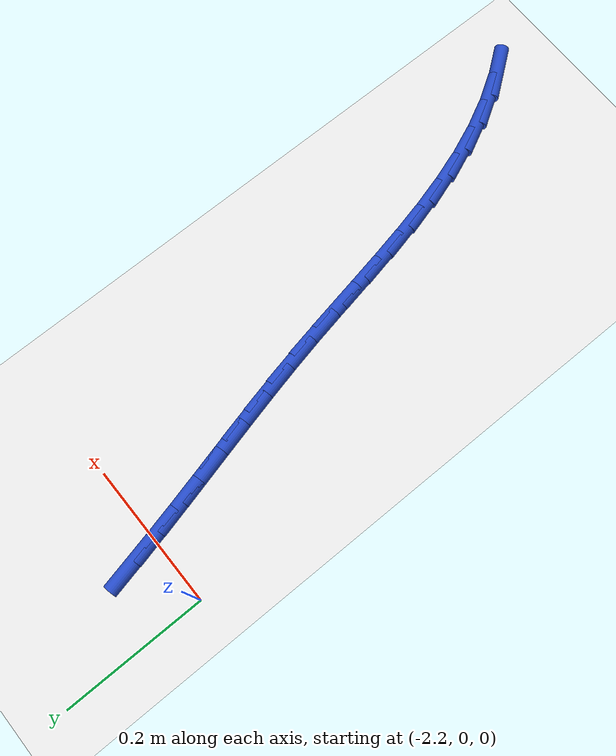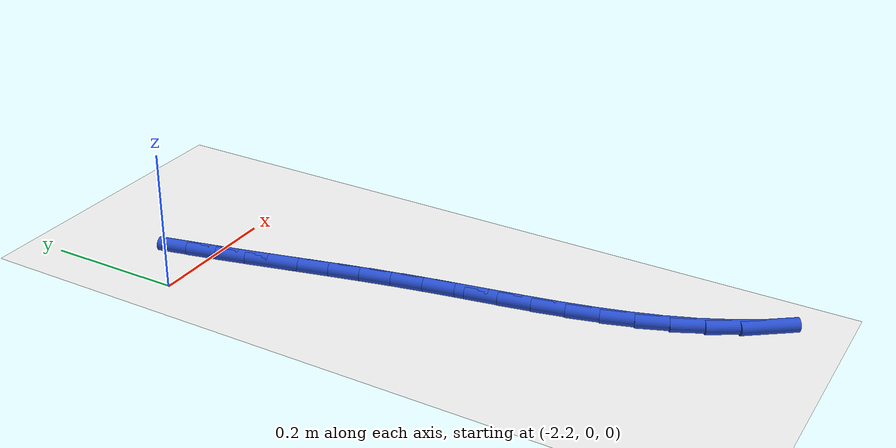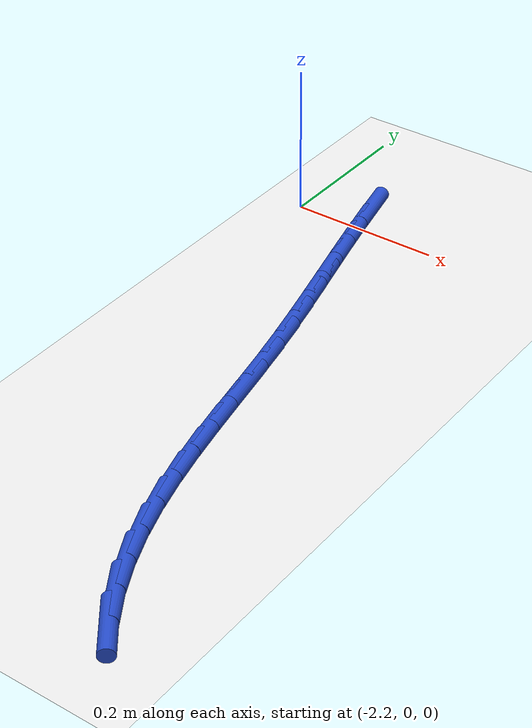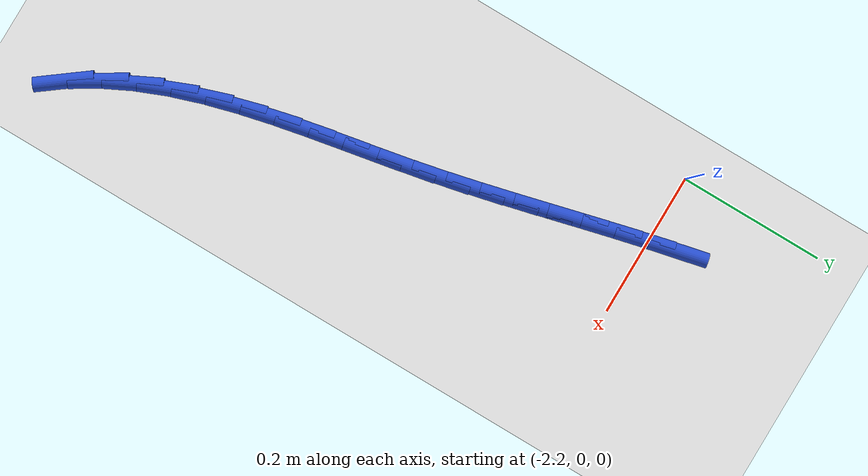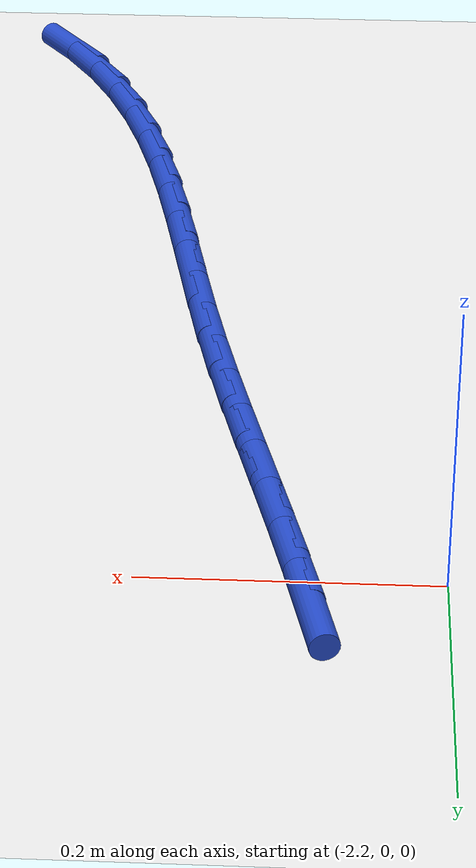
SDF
<sdf version="1.6">
 <world name="default">
  <model name="ground_plane">
   <static>1</static>
   <link name="link">
    <collision name="collision">
     <geometry><plane><normal>0 0 1</normal><size>100 100</size></plane></geometry>
     <surface><friction><ode><mu>100</mu><mu2>50</mu2></ode></friction></surface>
    </collision>
    <visual name="visual">
     <cast_shadows>0</cast_shadows>
     <geometry><plane><normal>0 0 1</normal><size>100 100</size></plane></geometry>
     <material>
      <script><uri>file://media/materials/scripts/gazebo.material</uri><name>Gazebo/WhiteGlow</name></script>
     </material>
    </visual>
   </link>
  </model>
  <model name="line">
   <link name="link_77">
    <pose>-2.1142000511492327 0.0394277965755552 0.01 0 1.57 -1.3484140880398947</pose>
    <collision name="collision">
     <geometry><cylinder><radius>0.01</radius><length>0.08</length></cylinder></geometry>
    </collision>
    <visual name="visual">
     <material>
      <script><name>Gazebo/Blue</name><uri>file://media/materials/scripts/gazebo.material</uri></script>
     </material>
     <geometry><cylinder><radius>0.01</radius><length>0.08</length></cylinder></geometry>
    </visual>
   </link>
   <link name="link_78">
    <pose>-2.104158903244551 -0.0049780658135669086 0.01 0 1.57 -1.334063538737932</pose>
    <collision name="collision">
     <geometry><cylinder><radius>0.01</radius><length>0.08</length></cylinder></geometry>
    </collision>
    <visual name="visual">
     <material>
      <script><name>Gazebo/Blue</name><uri>file://media/materials/scripts/gazebo.material</uri></script>
     </material>
     <geometry><cylinder><radius>0.01</radius><length>0.08</length></cylinder></geometry>
    </visual>
   </link>
   <link name="link_79">
    <pose>-2.093472280368735 -0.04927373934642896 0.01 0 1.57 -1.325168287179486</pose>
    <collision name="collision">
     <geometry><cylinder><radius>0.01</radius><length>0.08</length></cylinder></geometry>
    </collision>
    <visual name="visual">
     <material>
      <script><name>Gazebo/Blue</name><uri>file://media/materials/scripts/gazebo.material</uri></script>
     </material>
     <geometry><cylinder><radius>0.01</radius><length>0.08</length></cylinder></geometry>
    </visual>
   </link>
   <link name="link_80">
    <pose>-2.0823722533243516 -0.09355162733251586 0.01 0 1.57 -1.3217213898707902</pose>
    <collision name="collision">
     <geometry><cylinder><radius>0.01</radius><length>0.08</length></cylinder></geometry>
    </collision>
    <visual name="visual">
     <material>
      <script><name>Gazebo/Blue</name><uri>file://media/materials/scripts/gazebo.material</uri></script>
     </material>
     <geometry><cylinder><radius>0.01</radius><length>0.08</length></cylinder></geometry>
    </visual>
   </link>
   <link name="link_81">
    <pose>-2.071090892913961 -0.13790413308131555 0.01 0 1.57 -1.3236890536183739</pose>
    <collision name="collision">
     <geometry><cylinder><radius>0.01</radius><length>0.08</length></cylinder></geometry>
    </collision>
    <visual name="visual">
     <material>
      <script><name>Gazebo/Blue</name><uri>file://media/materials/scripts/gazebo.material</uri></script>
     </material>
     <geometry><cylinder><radius>0.01</radius><length>0.08</length></cylinder></geometry>
    </visual>
   </link>
   <link name="link_82">
    <pose>-2.0598602699401303 -0.18242365990231382 0.01 0 1.57 -1.3310142571847472</pose>
    <collision name="collision">
     <geometry><cylinder><radius>0.01</radius><length>0.08</length></cylinder></geometry>
    </collision>
    <visual name="visual">
     <material>
      <script><name>Gazebo/Blue</name><uri>file://media/materials/scripts/gazebo.material</uri></script>
     </material>
     <geometry><cylinder><radius>0.01</radius><length>0.08</length></cylinder></geometry>
    </visual>
   </link>
   <link name="link_83">
    <pose>-2.048912455205422 -0.22720261110499623 0.01 0 1.57 -1.3436158804828595</pose>
    <collision name="collision">
     <geometry><cylinder><radius>0.01</radius><length>0.08</length></cylinder></geometry>
    </collision>
    <visual name="visual">
     <material>
      <script><name>Gazebo/Blue</name><uri>file://media/materials/scripts/gazebo.material</uri></script>
     </material>
     <geometry><cylinder><radius>0.01</radius><length>0.08</length></cylinder></geometry>
    </visual>
   </link>
   <link name="link_84">
    <pose>-2.0384795195124013 -0.27233338999885087 0.01 0 1.57 -1.361332834188481</pose>
    <collision name="collision">
     <geometry><cylinder><radius>0.01</radius><length>0.08</length></cylinder></geometry>
    </collision>
    <visual name="visual">
     <material>
      <script><name>Gazebo/Blue</name><uri>file://media/materials/scripts/gazebo.material</uri></script>
     </material>
     <geometry><cylinder><radius>0.01</radius><length>0.08</length></cylinder></geometry>
    </visual>
   </link>
   <link name="link_85">
    <pose>-2.0287913365513295 -0.31790733289367434 0.01 0 1.57 -1.3786689317488774</pose>
    <collision name="collision">
     <geometry><cylinder><radius>0.01</radius><length>0.08</length></cylinder></geometry>
    </collision>
    <visual name="visual">
     <material>
      <script><name>Gazebo/Blue</name><uri>file://media/materials/scripts/gazebo.material</uri></script>
     </material>
     <geometry><cylinder><radius>0.01</radius><length>0.08</length></cylinder></geometry>
    </visual>
   </link>
   <link name="link_86">
    <pose>-2.019844084588852 -0.36390228488452786 0.01 0 1.57 -1.3856853237308298</pose>
    <collision name="collision">
     <geometry><cylinder><radius>0.01</radius><length>0.08</length></cylinder></geometry>
    </collision>
    <visual name="visual">
     <material>
      <script><name>Gazebo/Blue</name><uri>file://media/materials/scripts/gazebo.material</uri></script>
     </material>
     <geometry><cylinder><radius>0.01</radius><length>0.08</length></cylinder></geometry>
    </visual>
   </link>
   <link name="link_87">
    <pose>-2.0111964127377417 -0.41008361058915255 0.01 0 1.57 -1.3814303179665612</pose>
    <collision name="collision">
     <geometry><cylinder><radius>0.01</radius><length>0.08</length></cylinder></geometry>
    </collision>
    <visual name="visual">
     <material>
      <script><name>Gazebo/Blue</name><uri>file://media/materials/scripts/gazebo.material</uri></script>
     </material>
     <geometry><cylinder><radius>0.01</radius><length>0.08</length></cylinder></geometry>
    </visual>
   </link>
   <link name="link_88">
    <pose>-2.002358908875138 -0.45619333429654296 0.01 0 1.57 -1.3658360548391486</pose>
    <collision name="collision">
     <geometry><cylinder><radius>0.01</radius><length>0.08</length></cylinder></geometry>
    </collision>
    <visual name="visual">
     <material>
      <script><name>Gazebo/Blue</name><uri>file://media/materials/scripts/gazebo.material</uri></script>
     </material>
     <geometry><cylinder><radius>0.01</radius><length>0.08</length></cylinder></geometry>
    </visual>
   </link>
   <link name="link_89">
    <pose>-1.9928421608781812 -0.5019734802956966 0.01 0 1.57 -1.338618748872076</pose>
    <collision name="collision">
     <geometry><cylinder><radius>0.01</radius><length>0.08</length></cylinder></geometry>
    </collision>
    <visual name="visual">
     <material>
      <script><name>Gazebo/Blue</name><uri>file://media/materials/scripts/gazebo.material</uri></script>
     </material>
     <geometry><cylinder><radius>0.01</radius><length>0.08</length></cylinder></geometry>
    </visual>
   </link>
   <link name="link_90">
    <pose>-1.9821567566240113 -0.547166072875608 0.01 0 1.57 -1.299329466473492</pose>
    <collision name="collision">
     <geometry><cylinder><radius>0.01</radius><length>0.08</length></cylinder></geometry>
    </collision>
    <visual name="visual">
     <material>
      <script><name>Gazebo/Blue</name><uri>file://media/materials/scripts/gazebo.material</uri></script>
     </material>
     <geometry><cylinder><radius>0.01</radius><length>0.08</length></cylinder></geometry>
    </visual>
   </link>
   <link name="link_91">
    <pose>-1.969813283989768 -0.5915131363252722 0.01 0 1.57 -1.2474558540791212</pose>
    <collision name="collision">
     <geometry><cylinder><radius>0.01</radius><length>0.08</length></cylinder></geometry>
    </collision>
    <visual name="visual">
     <material>
      <script><name>Gazebo/Blue</name><uri>file://media/materials/scripts/gazebo.material</uri></script>
     </material>
     <geometry><cylinder><radius>0.01</radius><length>0.08</length></cylinder></geometry>
    </visual>
   </link>
   <link name="link_92">
    <pose>-1.9553223308525918 -0.6347566949336862 0.01 0 1.57 -1.182594846293878</pose>
    <collision name="collision">
     <geometry><cylinder><radius>0.01</radius><length>0.08</length></cylinder></geometry>
    </collision>
    <visual name="visual">
     <material>
      <script><name>Gazebo/Blue</name><uri>file://media/materials/scripts/gazebo.material</uri></script>
     </material>
     <geometry><cylinder><radius>0.01</radius><length>0.08</length></cylinder></geometry>
    </visual>
   </link>
   <link name="link_93">
    <pose>-1.938194485089623 -0.6766387729898443 0.01 0 1.57 -1.1047109303290008</pose>
    <collision name="collision">
     <geometry><cylinder><radius>0.01</radius><length>0.08</length></cylinder></geometry>
    </collision>
    <visual name="visual">
     <material>
      <script><name>Gazebo/Blue</name><uri>file://media/materials/scripts/gazebo.material</uri></script>
     </material>
     <geometry><cylinder><radius>0.01</radius><length>0.08</length></cylinder></geometry>
    </visual>
   </link>
   <link name="link_94">
    <pose>-1.917940334578001 -0.7169013947827434 0.01 0 1.57 -1.0148196061011476</pose>
    <collision name="collision">
     <geometry><cylinder><radius>0.01</radius><length>0.08</length></cylinder></geometry>
    </collision>
    <visual name="visual">
     <material>
      <script><name>Gazebo/Blue</name><uri>file://media/materials/scripts/gazebo.material</uri></script>
     </material>
     <geometry><cylinder><radius>0.01</radius><length>0.08</length></cylinder></geometry>
    </visual>
   </link>
   <link name="link_95">
    <pose>-1.8940873613239986 -0.7552897927131631 0.01 0 1.57 -0.922447835072122</pose>
    <collision name="collision">
     <geometry><cylinder><radius>0.01</radius><length>0.08</length></cylinder></geometry>
    </collision>
    <visual name="visual">
     <material>
      <script><name>Gazebo/Blue</name><uri>file://media/materials/scripts/gazebo.material</uri></script>
     </material>
     <geometry><cylinder><radius>0.01</radius><length>0.08</length></cylinder></geometry>
    </visual>
   </link>
  </model>
 </world>
</sdf>
